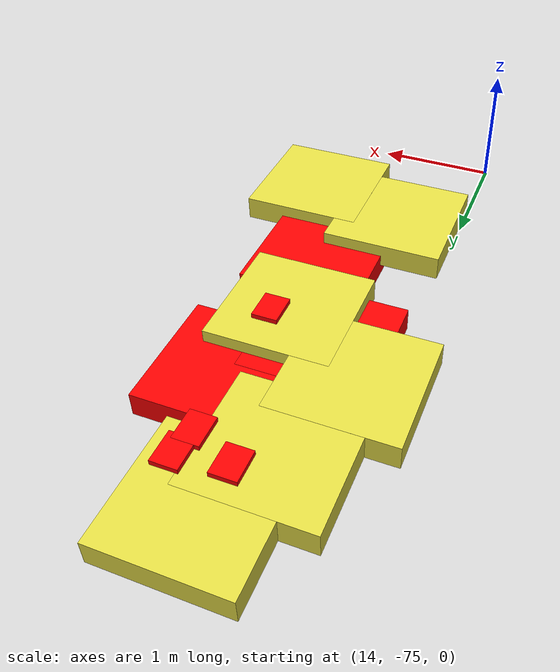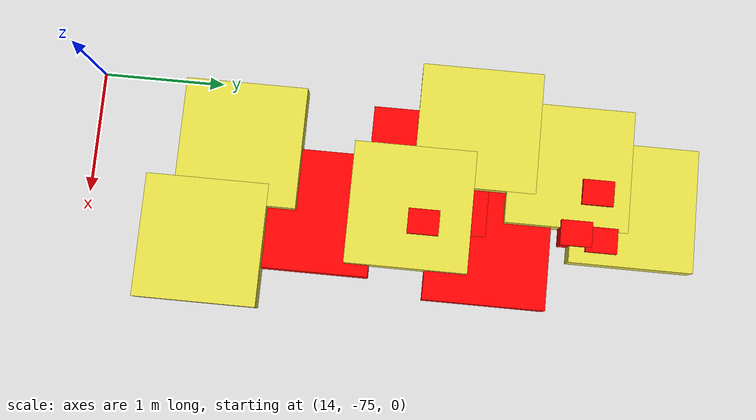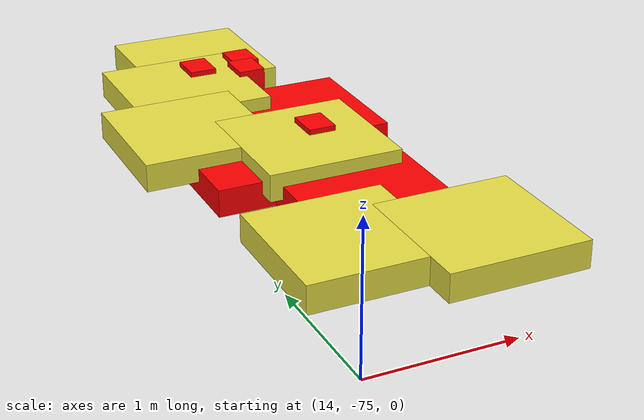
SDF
<sdf version="1.4">
 <world name="default">
  <include><uri>model://sun</uri></include>
  <model name="fire_box_clone_1">
   <link name="link">
    <inertial>
     <mass>1</mass>
     <inertia>
      <ixx>0.166667</ixx>
      <ixy>0</ixy>
      <ixz>0</ixz>
      <iyy>0.166667</iyy>
      <iyz>0</iyz>
      <izz>0.166667</izz>
     </inertia>
    </inertial>
    <visual name="visual">
     <geometry><box><size>1 1 0.2</size></box></geometry>
     <material>
      <script><name>Gazebo/Grey</name><uri>file://media/materials/scripts/gazebo.material</uri></script>
      <ambient>1 0 0 1</ambient>
      <diffuse>1 0 0 1</diffuse>
      <specular>0.01 0.01 0.01 1</specular>
      <emissive>0 0 0 1</emissive>
      <shader type="vertex"><normal_map>__default__</normal_map></shader>
      <lighting>1</lighting>
     </material>
    </visual>
   </link>
   <static>1</static>
   <pose>15.1356 -71.6886 -0.000684 2e-05 -0 5.1e-05</pose>
  </model>
  <model name="fire_box_clone_2">
   <link name="link">
    <inertial>
     <mass>1</mass>
     <inertia>
      <ixx>0.166667</ixx>
      <ixy>0</ixy>
      <ixz>0</ixz>
      <iyy>0.166667</iyy>
      <iyz>0</iyz>
      <izz>0.166667</izz>
     </inertia>
    </inertial>
    <visual name="visual">
     <geometry><box><size>1 1 0.2</size></box></geometry>
     <material>
      <script><name>Gazebo/Grey</name><uri>file://media/materials/scripts/gazebo.material</uri></script>
      <ambient>1 0 0 1</ambient>
      <diffuse>1 0 0 1</diffuse>
      <specular>0.01 0.01 0.01 1</specular>
      <emissive>0 0 0 1</emissive>
      <shader type="vertex"><normal_map>__default__</normal_map></shader>
      <lighting>1</lighting>
     </material>
    </visual>
   </link>
   <static>1</static>
   <pose>14.5844 -72.2161 -0.000684 2e-05 -0 5.1e-05</pose>
  </model>
  <model name="fire_box_clone_4">
   <link name="link">
    <inertial>
     <mass>1</mass>
     <inertia>
      <ixx>0.166667</ixx>
      <ixy>0</ixy>
      <ixz>0</ixz>
      <iyy>0.166667</iyy>
      <iyz>0</iyz>
      <izz>0.166667</izz>
     </inertia>
    </inertial>
    <visual name="visual">
     <geometry><box><size>1 1 0.2</size></box></geometry>
     <material>
      <script><name>Gazebo/Grey</name><uri>file://media/materials/scripts/gazebo.material</uri></script>
      <ambient>1 0 0 1</ambient>
      <diffuse>1 0 0 1</diffuse>
      <specular>0.01 0.01 0.01 1</specular>
      <emissive>0 0 0 1</emissive>
      <shader type="vertex"><normal_map>__default__</normal_map></shader>
      <lighting>1</lighting>
     </material>
    </visual>
   </link>
   <static>1</static>
   <pose>15.0003 -73.1414 -0.000684 2e-05 -0 5.1e-05</pose>
  </model>
  <model name="fire_box_2_clone">
   <link name="link">
    <inertial>
     <mass>1</mass>
     <inertia>
      <ixx>0.166667</ixx>
      <ixy>0</ixy>
      <ixz>0</ixz>
      <iyy>0.166667</iyy>
      <iyz>0</iyz>
      <izz>0.166667</izz>
     </inertia>
    </inertial>
    <visual name="visual">
     <geometry><box><size>1 1 0.2</size></box></geometry>
     <material>
      <script><name>Gazebo/Grey</name><uri>file://media/materials/scripts/gazebo.material</uri></script>
      <ambient>0.9 0.87 0.27 1</ambient>
      <diffuse>0.9 0.87 0.27 1</diffuse>
      <specular>0.01 0.01 0.01 1</specular>
      <emissive>0 0 0 1</emissive>
      <shader type="vertex"><normal_map>__default__</normal_map></shader>
      <lighting>1</lighting>
     </material>
    </visual>
   </link>
   <static>1</static>
   <pose>14.733 -70.5461 0.103208 2e-05 -0 5.1e-05</pose>
  </model>
  <model name="fire_box_2_clone_0">
   <link name="link">
    <inertial>
     <mass>1</mass>
     <inertia>
      <ixx>0.166667</ixx>
      <ixy>0</ixy>
      <ixz>0</ixz>
      <iyy>0.166667</iyy>
      <iyz>0</iyz>
      <izz>0.166667</izz>
     </inertia>
    </inertial>
    <visual name="visual">
     <geometry><box><size>1 1 0.2</size></box></geometry>
     <material>
      <script><name>Gazebo/Grey</name><uri>file://media/materials/scripts/gazebo.material</uri></script>
      <ambient>0.9 0.87 0.27 1</ambient>
      <diffuse>0.9 0.87 0.27 1</diffuse>
      <specular>0.01 0.01 0.01 1</specular>
      <emissive>0 0 0 1</emissive>
      <shader type="vertex"><normal_map>__default__</normal_map></shader>
      <lighting>1</lighting>
     </material>
    </visual>
   </link>
   <static>1</static>
   <pose>14.4584 -71.0804 0.103208 2e-05 -0 5.1e-05</pose>
  </model>
  <model name="fire_box_2_clone_2">
   <link name="link">
    <inertial>
     <mass>1</mass>
     <inertia>
      <ixx>0.166667</ixx>
      <ixy>0</ixy>
      <ixz>0</ixz>
      <iyy>0.166667</iyy>
      <iyz>0</iyz>
      <izz>0.166667</izz>
     </inertia>
    </inertial>
    <visual name="visual">
     <geometry><box><size>1 1 0.2</size></box></geometry>
     <material>
      <script><name>Gazebo/Grey</name><uri>file://media/materials/scripts/gazebo.material</uri></script>
      <ambient>0.9 0.87 0.27 1</ambient>
      <diffuse>0.9 0.87 0.27 1</diffuse>
      <specular>0.01 0.01 0.01 1</specular>
      <emissive>0 0 0 1</emissive>
      <shader type="vertex"><normal_map>__default__</normal_map></shader>
      <lighting>1</lighting>
     </material>
    </visual>
   </link>
   <static>1</static>
   <pose>14.2088 -71.8443 0.103208 2e-05 -0 5.1e-05</pose>
  </model>
  <model name="fire_box_2_clone_4">
   <link name="link">
    <inertial>
     <mass>1</mass>
     <inertia>
      <ixx>0.166667</ixx>
      <ixy>0</ixy>
      <ixz>0</ixz>
      <iyy>0.166667</iyy>
      <iyz>0</iyz>
      <izz>0.166667</izz>
     </inertia>
    </inertial>
    <visual name="visual">
     <geometry><box><size>1 1 0.2</size></box></geometry>
     <material>
      <script><name>Gazebo/Grey</name><uri>file://media/materials/scripts/gazebo.material</uri></script>
      <ambient>0.9 0.87 0.27 1</ambient>
      <diffuse>0.9 0.87 0.27 1</diffuse>
      <specular>0.01 0.01 0.01 1</specular>
      <emissive>0 0 0 1</emissive>
      <shader type="vertex"><normal_map>__default__</normal_map></shader>
      <lighting>1</lighting>
     </material>
    </visual>
   </link>
   <static>1</static>
   <pose>14.9046 -72.3438 0.103208 2e-05 -0 5.1e-05</pose>
  </model>
  <model name="fire_box_2_clone_5">
   <link name="link">
    <inertial>
     <mass>1</mass>
     <inertia>
      <ixx>0.166667</ixx>
      <ixy>0</ixy>
      <ixz>0</ixz>
      <iyy>0.166667</iyy>
      <iyz>0</iyz>
      <izz>0.166667</izz>
     </inertia>
    </inertial>
    <visual name="visual">
     <geometry><box><size>1 1 0.2</size></box></geometry>
     <material>
      <script><name>Gazebo/Grey</name><uri>file://media/materials/scripts/gazebo.material</uri></script>
      <ambient>0.9 0.87 0.27 1</ambient>
      <diffuse>0.9 0.87 0.27 1</diffuse>
      <specular>0.01 0.01 0.01 1</specular>
      <emissive>0 0 0 1</emissive>
      <shader type="vertex"><normal_map>__default__</normal_map></shader>
      <lighting>1</lighting>
     </material>
    </visual>
   </link>
   <static>1</static>
   <pose>14.5101 -73.7734 0.103208 2e-05 -0 5.1e-05</pose>
  </model>
  <model name="fire_box_2_clone_6">
   <link name="link">
    <inertial>
     <mass>1</mass>
     <inertia>
      <ixx>0.166667</ixx>
      <ixy>0</ixy>
      <ixz>0</ixz>
      <iyy>0.166667</iyy>
      <iyz>0</iyz>
      <izz>0.166667</izz>
     </inertia>
    </inertial>
    <visual name="visual">
     <geometry><box><size>1 1 0.2</size></box></geometry>
     <material>
      <script><name>Gazebo/Grey</name><uri>file://media/materials/scripts/gazebo.material</uri></script>
      <ambient>0.9 0.87 0.27 1</ambient>
      <diffuse>0.9 0.87 0.27 1</diffuse>
      <specular>0.01 0.01 0.01 1</specular>
      <emissive>0 0 0 1</emissive>
      <shader type="vertex"><normal_map>__default__</normal_map></shader>
      <lighting>1</lighting>
     </material>
    </visual>
   </link>
   <static>1</static>
   <pose>15.3292 -74.0074 0.103208 2e-05 -0 5.1e-05</pose>
  </model>
  <model name="fire_box_clone_10_clone_clone_7">
   <link name="link">
    <inertial>
     <mass>1</mass>
     <inertia>
      <ixx>0.166667</ixx>
      <ixy>0</ixy>
      <ixz>0</ixz>
      <iyy>0.166667</iyy>
      <iyz>0</iyz>
      <izz>0.166667</izz>
     </inertia>
    </inertial>
    <visual name="visual">
     <geometry><box><size>0.205115 0.254942 0.2</size></box></geometry>
     <material>
      <script><name>Gazebo/Grey</name><uri>file://media/materials/scripts/gazebo.material</uri></script>
      <ambient>1 0 0 1</ambient>
      <diffuse>1 0 0 1</diffuse>
      <specular>0.01 0.01 0.01 1</specular>
      <emissive>0 0 0 1</emissive>
      <shader type="vertex"><normal_map>__default__</normal_map></shader>
      <lighting>1</lighting>
     </material>
    </visual>
   </link>
   <static>1</static>
   <pose>14.6555 -70.8455 0.142519 2e-05 -0 5.1e-05</pose>
  </model>
  <model name="fire_box_clone_10_clone_clone_8">
   <link name="link">
    <inertial>
     <mass>1</mass>
     <inertia>
      <ixx>0.166667</ixx>
      <ixy>0</ixy>
      <ixz>0</ixz>
      <iyy>0.166667</iyy>
      <iyz>0</iyz>
      <izz>0.166667</izz>
     </inertia>
    </inertial>
    <visual name="visual">
     <geometry><box><size>0.205115 0.254942 0.2</size></box></geometry>
     <material>
      <script><name>Gazebo/Grey</name><uri>file://media/materials/scripts/gazebo.material</uri></script>
      <ambient>1 0 0 1</ambient>
      <diffuse>1 0 0 1</diffuse>
      <specular>0.01 0.01 0.01 1</specular>
      <emissive>0 0 0 1</emissive>
      <shader type="vertex"><normal_map>__default__</normal_map></shader>
      <lighting>1</lighting>
     </material>
    </visual>
   </link>
   <static>1</static>
   <pose>15.023 -72.2306 0.142519 2e-05 -0 5.1e-05</pose>
  </model>
  <model name="fire_box_clone_10_clone_clone_9">
   <link name="link">
    <inertial>
     <mass>1</mass>
     <inertia>
      <ixx>0.166667</ixx>
      <ixy>0</ixy>
      <ixz>0</ixz>
      <iyy>0.166667</iyy>
      <iyz>0</iyz>
      <izz>0.166667</izz>
     </inertia>
    </inertial>
    <visual name="visual">
     <geometry><box><size>0.205115 0.254942 0.2</size></box></geometry>
     <material>
      <script><name>Gazebo/Grey</name><uri>file://media/materials/scripts/gazebo.material</uri></script>
      <ambient>1 0 0 1</ambient>
      <diffuse>1 0 0 1</diffuse>
      <specular>0.01 0.01 0.01 1</specular>
      <emissive>0 0 0 1</emissive>
      <shader type="vertex"><normal_map>__default__</normal_map></shader>
      <lighting>1</lighting>
     </material>
    </visual>
   </link>
   <static>1</static>
   <pose>15.0374 -70.7943 0.142519 2e-05 -0 5.1e-05</pose>
  </model>
  <model name="fire_box_clone_10_clone_clone_10">
   <link name="link">
    <inertial>
     <mass>1</mass>
     <inertia>
      <ixx>0.166667</ixx>
      <ixy>0</ixy>
      <ixz>0</ixz>
      <iyy>0.166667</iyy>
      <iyz>0</iyz>
      <izz>0.166667</izz>
     </inertia>
    </inertial>
    <visual name="visual">
     <geometry><box><size>0.205115 0.254942 0.2</size></box></geometry>
     <material>
      <script><name>Gazebo/Grey</name><uri>file://media/materials/scripts/gazebo.material</uri></script>
      <ambient>1 0 0 1</ambient>
      <diffuse>1 0 0 1</diffuse>
      <specular>0.01 0.01 0.01 1</specular>
      <emissive>0 0 0 1</emissive>
      <shader type="vertex"><normal_map>__default__</normal_map></shader>
      <lighting>1</lighting>
     </material>
    </visual>
   </link>
   <static>1</static>
   <pose>15 -71 0.142519 2e-05 -0 5.1e-05</pose>
  </model>
 </world>
</sdf>
